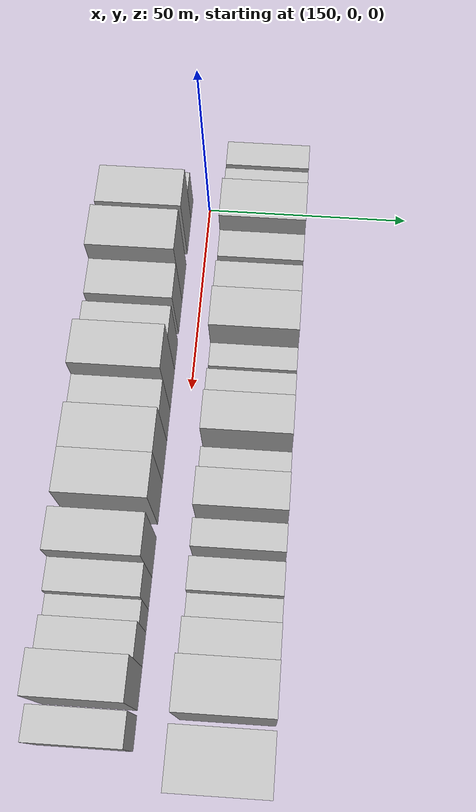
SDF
<sdf version="1.6">
 <world name="default">
  <model name="building_15">
   <static>1</static>
   <pose>143.4228 14.5000 0 0.000000 0.000000 1.570796</pose>
   <link name="link">
    <pose>0 0 7.50 0 0 0</pose>
    <collision name="collision"><geometry><box><size>20.0000 6.7200 15.0000</size></box></geometry></collision>
    <visual name="visual">
     <cast_shadows>0</cast_shadows>
     <geometry><box><size>20.0000 6.7200 15.0000</size></box></geometry>
     <material>
      <script>
       <uri>model://HANNAS_wall/materials/scripts</uri>
       <uri>model://HANNAS_wall/materials/textures</uri>
       <name>vrc/HANNAS_wall</name>
      </script>
     </material>
    </visual>
   </link>
  </model>
  <model name="building_16">
   <static>1</static>
   <pose>151.4586 14.5000 0 0.000000 0.000000 1.570796</pose>
   <link name="link">
    <pose>0 0 7.50 0 0 0</pose>
    <collision name="collision"><geometry><box><size>20.0000 7.3518 15.0000</size></box></geometry></collision>
    <visual name="visual">
     <cast_shadows>0</cast_shadows>
     <geometry><box><size>20.0000 7.3518 15.0000</size></box></geometry>
     <material>
      <script>
       <uri>model://HANNAS_wall/materials/scripts</uri>
       <uri>model://HANNAS_wall/materials/textures</uri>
       <name>vrc/HANNAS_wall</name>
      </script>
     </material>
    </visual>
   </link>
  </model>
  <model name="building_17">
   <static>1</static>
   <pose>160.2299 14.5000 0 0.000000 0.000000 1.570796</pose>
   <link name="link">
    <pose>0 0 10.50 0 0 0</pose>
    <collision name="collision"><geometry><box><size>20.0000 10.1907 21.0000</size></box></geometry></collision>
    <visual name="visual">
     <cast_shadows>0</cast_shadows>
     <geometry><box><size>20.0000 10.1907 21.0000</size></box></geometry>
     <material>
      <script>
       <uri>model://HANNAS_wall/materials/scripts</uri>
       <uri>model://HANNAS_wall/materials/textures</uri>
       <name>vrc/HANNAS_wall</name>
      </script>
     </material>
    </visual>
   </link>
  </model>
  <model name="building_18">
   <static>1</static>
   <pose>168.8607 14.5000 0 0.000000 0.000000 1.570796</pose>
   <link name="link">
    <pose>0 0 7.50 0 0 0</pose>
    <collision name="collision"><geometry><box><size>20.0000 7.0709 15.0000</size></box></geometry></collision>
    <visual name="visual">
     <cast_shadows>0</cast_shadows>
     <geometry><box><size>20.0000 7.0709 15.0000</size></box></geometry>
     <material>
      <script>
       <uri>model://HANNAS_wall/materials/scripts</uri>
       <uri>model://HANNAS_wall/materials/textures</uri>
       <name>vrc/HANNAS_wall</name>
      </script>
     </material>
    </visual>
   </link>
  </model>
  <model name="building_19">
   <static>1</static>
   <pose>179.5474 14.5000 0 0.000000 0.000000 1.570796</pose>
   <link name="link">
    <pose>0 0 9.00 0 0 0</pose>
    <collision name="collision"><geometry><box><size>20.0000 8.3025 18.0000</size></box></geometry></collision>
    <visual name="visual">
     <cast_shadows>0</cast_shadows>
     <geometry><box><size>20.0000 8.3025 18.0000</size></box></geometry>
     <material>
      <script>
       <uri>model://HANNAS_wall/materials/scripts</uri>
       <uri>model://HANNAS_wall/materials/textures</uri>
       <name>vrc/HANNAS_wall</name>
      </script>
     </material>
    </visual>
   </link>
  </model>
  <model name="building_20">
   <static>1</static>
   <pose>188.5051 14.5000 0 0.000000 0.000000 1.570796</pose>
   <link name="link">
    <pose>0 0 10.50 0 0 0</pose>
    <collision name="collision"><geometry><box><size>20.0000 9.6130 21.0000</size></box></geometry></collision>
    <visual name="visual">
     <cast_shadows>0</cast_shadows>
     <geometry><box><size>20.0000 9.6130 21.0000</size></box></geometry>
     <material>
      <script>
       <uri>model://HANNAS_wall/materials/scripts</uri>
       <uri>model://HANNAS_wall/materials/textures</uri>
       <name>vrc/HANNAS_wall</name>
      </script>
     </material>
    </visual>
   </link>
  </model>
  <model name="building_21">
   <static>1</static>
   <pose>196.2098 14.5000 0 0.000000 0.000000 1.570796</pose>
   <link name="link">
    <pose>0 0 6.00 0 0 0</pose>
    <collision name="collision"><geometry><box><size>20.0000 5.7962 12.0000</size></box></geometry></collision>
    <visual name="visual">
     <cast_shadows>0</cast_shadows>
     <geometry><box><size>20.0000 5.7962 12.0000</size></box></geometry>
     <material>
      <script>
       <uri>model://HANNAS_wall/materials/scripts</uri>
       <uri>model://HANNAS_wall/materials/textures</uri>
       <name>vrc/HANNAS_wall</name>
      </script>
     </material>
    </visual>
   </link>
  </model>
  <model name="building_22">
   <static>1</static>
   <pose>204.2929 14.5000 0 0.000000 0.000000 1.570796</pose>
   <link name="link">
    <pose>0 0 7.50 0 0 0</pose>
    <collision name="collision"><geometry><box><size>20.0000 6.3700 15.0000</size></box></geometry></collision>
    <visual name="visual">
     <cast_shadows>0</cast_shadows>
     <geometry><box><size>20.0000 6.3700 15.0000</size></box></geometry>
     <material>
      <script>
       <uri>model://HANNAS_wall/materials/scripts</uri>
       <uri>model://HANNAS_wall/materials/textures</uri>
       <name>vrc/HANNAS_wall</name>
      </script>
     </material>
    </visual>
   </link>
  </model>
  <model name="building_23">
   <static>1</static>
   <pose>211.9567 14.5000 0 0.000000 0.000000 1.570796</pose>
   <link name="link">
    <pose>0 0 9.00 0 0 0</pose>
    <collision name="collision"><geometry><box><size>20.0000 8.9577 18.0000</size></box></geometry></collision>
    <visual name="visual">
     <cast_shadows>0</cast_shadows>
     <geometry><box><size>20.0000 8.9577 18.0000</size></box></geometry>
     <material>
      <script>
       <uri>model://HANNAS_wall/materials/scripts</uri>
       <uri>model://HANNAS_wall/materials/textures</uri>
       <name>vrc/HANNAS_wall</name>
      </script>
     </material>
    </visual>
   </link>
  </model>
  <model name="building_24">
   <static>1</static>
   <pose>221.1965 14.5000 0 0.000000 0.000000 1.570796</pose>
   <link name="link">
    <pose>0 0 6.00 0 0 0</pose>
    <collision name="collision"><geometry><box><size>20.0000 5.5218 12.0000</size></box></geometry></collision>
    <visual name="visual">
     <cast_shadows>0</cast_shadows>
     <geometry><box><size>20.0000 5.5218 12.0000</size></box></geometry>
     <material>
      <script>
       <uri>model://HANNAS_wall/materials/scripts</uri>
       <uri>model://HANNAS_wall/materials/textures</uri>
       <name>vrc/HANNAS_wall</name>
      </script>
     </material>
    </visual>
   </link>
  </model>
  <model name="building_25">
   <static>1</static>
   <pose>229.0863 14.5000 0 0.000000 0.000000 1.570796</pose>
   <link name="link">
    <pose>0 0 9.00 0 0 0</pose>
    <collision name="collision"><geometry><box><size>20.0000 8.2580 18.0000</size></box></geometry></collision>
    <visual name="visual">
     <cast_shadows>0</cast_shadows>
     <geometry><box><size>20.0000 8.2580 18.0000</size></box></geometry>
     <material>
      <script>
       <uri>model://HANNAS_wall/materials/scripts</uri>
       <uri>model://HANNAS_wall/materials/textures</uri>
       <name>vrc/HANNAS_wall</name>
      </script>
     </material>
    </visual>
   </link>
  </model>
  <model name="building_26">
   <static>1</static>
   <pose>238.2428 14.5000 0 0.000000 0.000000 1.570796</pose>
   <link name="link">
    <pose>0 0 7.50 0 0 0</pose>
    <collision name="collision"><geometry><box><size>20.0000 6.0549 15.0000</size></box></geometry></collision>
    <visual name="visual">
     <cast_shadows>0</cast_shadows>
     <geometry><box><size>20.0000 6.0549 15.0000</size></box></geometry>
     <material>
      <script>
       <uri>model://HANNAS_wall/materials/scripts</uri>
       <uri>model://HANNAS_wall/materials/textures</uri>
       <name>vrc/HANNAS_wall</name>
      </script>
     </material>
    </visual>
   </link>
  </model>
  <model name="building_27">
   <static>1</static>
   <pose>246.7921 14.5000 0 0.000000 0.000000 1.570796</pose>
   <link name="link">
    <pose>0 0 7.50 0 0 0</pose>
    <collision name="collision"><geometry><box><size>20.0000 7.0436 15.0000</size></box></geometry></collision>
    <visual name="visual">
     <cast_shadows>0</cast_shadows>
     <geometry><box><size>20.0000 7.0436 15.0000</size></box></geometry>
     <material>
      <script>
       <uri>model://HANNAS_wall/materials/scripts</uri>
       <uri>model://HANNAS_wall/materials/textures</uri>
       <name>vrc/HANNAS_wall</name>
      </script>
     </material>
    </visual>
   </link>
  </model>
  <model name="building_28">
   <static>1</static>
   <pose>253.1995 14.5000 0 0.000000 0.000000 1.570796</pose>
   <link name="link">
    <pose>0 0 6.00 0 0 0</pose>
    <collision name="collision"><geometry><box><size>20.0000 5.7712 12.0000</size></box></geometry></collision>
    <visual name="visual">
     <cast_shadows>0</cast_shadows>
     <geometry><box><size>20.0000 5.7712 12.0000</size></box></geometry>
     <material>
      <script>
       <uri>model://HANNAS_wall/materials/scripts</uri>
       <uri>model://HANNAS_wall/materials/textures</uri>
       <name>vrc/HANNAS_wall</name>
      </script>
     </material>
    </visual>
   </link>
  </model>
  <model name="building_29">
   <static>1</static>
   <pose>260.0160 14.5000 0 0.000000 0.000000 1.570796</pose>
   <link name="link">
    <pose>0 0 9.00 0 0 0</pose>
    <collision name="collision"><geometry><box><size>20.0000 7.8619 18.0000</size></box></geometry></collision>
    <visual name="visual">
     <cast_shadows>0</cast_shadows>
     <geometry><box><size>20.0000 7.8619 18.0000</size></box></geometry>
     <material>
      <script>
       <uri>model://HANNAS_wall/materials/scripts</uri>
       <uri>model://HANNAS_wall/materials/textures</uri>
       <name>vrc/HANNAS_wall</name>
      </script>
     </material>
    </visual>
   </link>
  </model>
  <model name="building_30">
   <static>1</static>
   <pose>269.2634 14.5000 0 0.000000 0.000000 1.570796</pose>
   <link name="link">
    <pose>0 0 12.00 0 0 0</pose>
    <collision name="collision"><geometry><box><size>20.0000 10.6330 24.0000</size></box></geometry></collision>
    <visual name="visual">
     <cast_shadows>0</cast_shadows>
     <geometry><box><size>20.0000 10.6330 24.0000</size></box></geometry>
     <material>
      <script>
       <uri>model://HANNAS_wall/materials/scripts</uri>
       <uri>model://HANNAS_wall/materials/textures</uri>
       <name>vrc/HANNAS_wall</name>
      </script>
     </material>
    </visual>
   </link>
  </model>
  <model name="building_31">
   <static>1</static>
   <pose>282.4906 14.5000 0 0.000000 0.000000 1.570796</pose>
   <link name="link">
    <pose>0 0 12.00 0 0 0</pose>
    <collision name="collision"><geometry><box><size>20.0000 11.8214 24.0000</size></box></geometry></collision>
    <visual name="visual">
     <cast_shadows>0</cast_shadows>
     <geometry><box><size>20.0000 11.8214 24.0000</size></box></geometry>
     <material>
      <script>
       <uri>model://HANNAS_wall/materials/scripts</uri>
       <uri>model://HANNAS_wall/materials/textures</uri>
       <name>vrc/HANNAS_wall</name>
      </script>
     </material>
    </visual>
   </link>
  </model>
  <model name="building_47">
   <static>1</static>
   <pose>150.4358 -14.5000 0 0.000000 0.000000 1.570796</pose>
   <link name="link">
    <pose>0 0 6.00 0 0 0</pose>
    <collision name="collision"><geometry><box><size>20.0000 5.7327 12.0000</size></box></geometry></collision>
    <visual name="visual">
     <cast_shadows>0</cast_shadows>
     <geometry><box><size>20.0000 5.7327 12.0000</size></box></geometry>
     <material>
      <script>
       <uri>model://HANNAS_wall/materials/scripts</uri>
       <uri>model://HANNAS_wall/materials/textures</uri>
       <name>vrc/HANNAS_wall</name>
      </script>
     </material>
    </visual>
   </link>
  </model>
  <model name="building_48">
   <static>1</static>
   <pose>158.3227 -14.5000 0 0.000000 0.000000 1.570796</pose>
   <link name="link">
    <pose>0 0 10.50 0 0 0</pose>
    <collision name="collision"><geometry><box><size>20.0000 10.0410 21.0000</size></box></geometry></collision>
    <visual name="visual">
     <cast_shadows>0</cast_shadows>
     <geometry><box><size>20.0000 10.0410 21.0000</size></box></geometry>
     <material>
      <script>
       <uri>model://HANNAS_wall/materials/scripts</uri>
       <uri>model://HANNAS_wall/materials/textures</uri>
       <name>vrc/HANNAS_wall</name>
      </script>
     </material>
    </visual>
   </link>
  </model>
  <model name="building_49">
   <static>1</static>
   <pose>171.5510 -14.5000 0 0.000000 0.000000 1.570796</pose>
   <link name="link">
    <pose>0 0 12.00 0 0 0</pose>
    <collision name="collision"><geometry><box><size>20.0000 10.4157 24.0000</size></box></geometry></collision>
    <visual name="visual">
     <cast_shadows>0</cast_shadows>
     <geometry><box><size>20.0000 10.4157 24.0000</size></box></geometry>
     <material>
      <script>
       <uri>model://HANNAS_wall/materials/scripts</uri>
       <uri>model://HANNAS_wall/materials/textures</uri>
       <name>vrc/HANNAS_wall</name>
      </script>
     </material>
    </visual>
   </link>
  </model>
  <model name="building_50">
   <static>1</static>
   <pose>181.2449 -14.5000 0 0.000000 0.000000 1.570796</pose>
   <link name="link">
    <pose>0 0 9.00 0 0 0</pose>
    <collision name="collision"><geometry><box><size>20.0000 8.9720 18.0000</size></box></geometry></collision>
    <visual name="visual">
     <cast_shadows>0</cast_shadows>
     <geometry><box><size>20.0000 8.9720 18.0000</size></box></geometry>
     <material>
      <script>
       <uri>model://HANNAS_wall/materials/scripts</uri>
       <uri>model://HANNAS_wall/materials/textures</uri>
       <name>vrc/HANNAS_wall</name>
      </script>
     </material>
    </visual>
   </link>
  </model>
  <model name="building_51">
   <static>1</static>
   <pose>191.5676 -14.5000 0 0.000000 0.000000 1.570796</pose>
   <link name="link">
    <pose>0 0 9.00 0 0 0</pose>
    <collision name="collision"><geometry><box><size>20.0000 7.6734 18.0000</size></box></geometry></collision>
    <visual name="visual">
     <cast_shadows>0</cast_shadows>
     <geometry><box><size>20.0000 7.6734 18.0000</size></box></geometry>
     <material>
      <script>
       <uri>model://HANNAS_wall/materials/scripts</uri>
       <uri>model://HANNAS_wall/materials/textures</uri>
       <name>vrc/HANNAS_wall</name>
      </script>
     </material>
    </visual>
   </link>
  </model>
  <model name="building_52">
   <static>1</static>
   <pose>200.5616 -14.5000 0 0.000000 0.000000 1.570796</pose>
   <link name="link">
    <pose>0 0 12.00 0 0 0</pose>
    <collision name="collision"><geometry><box><size>20.0000 10.3144 24.0000</size></box></geometry></collision>
    <visual name="visual">
     <cast_shadows>0</cast_shadows>
     <geometry><box><size>20.0000 10.3144 24.0000</size></box></geometry>
     <material>
      <script>
       <uri>model://HANNAS_wall/materials/scripts</uri>
       <uri>model://HANNAS_wall/materials/textures</uri>
       <name>vrc/HANNAS_wall</name>
      </script>
     </material>
    </visual>
   </link>
  </model>
  <model name="building_53">
   <static>1</static>
   <pose>209.6001 -14.5000 0 0.000000 0.000000 1.570796</pose>
   <link name="link">
    <pose>0 0 9.00 0 0 0</pose>
    <collision name="collision"><geometry><box><size>20.0000 7.7626 18.0000</size></box></geometry></collision>
    <visual name="visual">
     <cast_shadows>0</cast_shadows>
     <geometry><box><size>20.0000 7.7626 18.0000</size></box></geometry>
     <material>
      <script>
       <uri>model://HANNAS_wall/materials/scripts</uri>
       <uri>model://HANNAS_wall/materials/textures</uri>
       <name>vrc/HANNAS_wall</name>
      </script>
     </material>
    </visual>
   </link>
  </model>
  <model name="building_54">
   <static>1</static>
   <pose>218.4899 -14.5000 0 0.000000 0.000000 1.570796</pose>
   <link name="link">
    <pose>0 0 10.50 0 0 0</pose>
    <collision name="collision"><geometry><box><size>20.0000 10.0170 21.0000</size></box></geometry></collision>
    <visual name="visual">
     <cast_shadows>0</cast_shadows>
     <geometry><box><size>20.0000 10.0170 21.0000</size></box></geometry>
     <material>
      <script>
       <uri>model://HANNAS_wall/materials/scripts</uri>
       <uri>model://HANNAS_wall/materials/textures</uri>
       <name>vrc/HANNAS_wall</name>
      </script>
     </material>
    </visual>
   </link>
  </model>
  <model name="building_55">
   <static>1</static>
   <pose>228.4119 -14.5000 0 0.000000 0.000000 1.570796</pose>
   <link name="link">
    <pose>0 0 10.50 0 0 0</pose>
    <collision name="collision"><geometry><box><size>20.0000 9.8272 21.0000</size></box></geometry></collision>
    <visual name="visual">
     <cast_shadows>0</cast_shadows>
     <geometry><box><size>20.0000 9.8272 21.0000</size></box></geometry>
     <material>
      <script>
       <uri>model://HANNAS_wall/materials/scripts</uri>
       <uri>model://HANNAS_wall/materials/textures</uri>
       <name>vrc/HANNAS_wall</name>
      </script>
     </material>
    </visual>
   </link>
  </model>
  <model name="building_56">
   <static>1</static>
   <pose>240.8388 -14.5000 0 0.000000 0.000000 1.570796</pose>
   <link name="link">
    <pose>0 0 10.50 0 0 0</pose>
    <collision name="collision"><geometry><box><size>20.0000 9.0266 21.0000</size></box></geometry></collision>
    <visual name="visual">
     <cast_shadows>0</cast_shadows>
     <geometry><box><size>20.0000 9.0266 21.0000</size></box></geometry>
     <material>
      <script>
       <uri>model://HANNAS_wall/materials/scripts</uri>
       <uri>model://HANNAS_wall/materials/textures</uri>
       <name>vrc/HANNAS_wall</name>
      </script>
     </material>
    </visual>
   </link>
  </model>
  <model name="building_57">
   <static>1</static>
   <pose>248.8666 -14.5000 0 0.000000 0.000000 1.570796</pose>
   <link name="link">
    <pose>0 0 7.50 0 0 0</pose>
    <collision name="collision"><geometry><box><size>20.0000 7.0290 15.0000</size></box></geometry></collision>
    <visual name="visual">
     <cast_shadows>0</cast_shadows>
     <geometry><box><size>20.0000 7.0290 15.0000</size></box></geometry>
     <material>
      <script>
       <uri>model://HANNAS_wall/materials/scripts</uri>
       <uri>model://HANNAS_wall/materials/textures</uri>
       <name>vrc/HANNAS_wall</name>
      </script>
     </material>
    </visual>
   </link>
  </model>
  <model name="building_58">
   <static>1</static>
   <pose>254.8053 -14.5000 0 0.000000 0.000000 1.570796</pose>
   <link name="link">
    <pose>0 0 6.00 0 0 0</pose>
    <collision name="collision"><geometry><box><size>20.0000 4.8484 12.0000</size></box></geometry></collision>
    <visual name="visual">
     <cast_shadows>0</cast_shadows>
     <geometry><box><size>20.0000 4.8484 12.0000</size></box></geometry>
     <material>
      <script>
       <uri>model://HANNAS_wall/materials/scripts</uri>
       <uri>model://HANNAS_wall/materials/textures</uri>
       <name>vrc/HANNAS_wall</name>
      </script>
     </material>
    </visual>
   </link>
  </model>
  <model name="building_59">
   <static>1</static>
   <pose>260.8475 -14.5000 0 0.000000 0.000000 1.570796</pose>
   <link name="link">
    <pose>0 0 7.50 0 0 0</pose>
    <collision name="collision"><geometry><box><size>20.0000 7.2360 15.0000</size></box></geometry></collision>
    <visual name="visual">
     <cast_shadows>0</cast_shadows>
     <geometry><box><size>20.0000 7.2360 15.0000</size></box></geometry>
     <material>
      <script>
       <uri>model://HANNAS_wall/materials/scripts</uri>
       <uri>model://HANNAS_wall/materials/textures</uri>
       <name>vrc/HANNAS_wall</name>
      </script>
     </material>
    </visual>
   </link>
  </model>
  <model name="building_60">
   <static>1</static>
   <pose>268.9087 -14.5000 0 0.000000 0.000000 1.570796</pose>
   <link name="link">
    <pose>0 0 10.50 0 0 0</pose>
    <collision name="collision"><geometry><box><size>20.0000 8.8864 21.0000</size></box></geometry></collision>
    <visual name="visual">
     <cast_shadows>0</cast_shadows>
     <geometry><box><size>20.0000 8.8864 21.0000</size></box></geometry>
     <material>
      <script>
       <uri>model://HANNAS_wall/materials/scripts</uri>
       <uri>model://HANNAS_wall/materials/textures</uri>
       <name>vrc/HANNAS_wall</name>
      </script>
     </material>
    </visual>
   </link>
  </model>
  <model name="building_61">
   <static>1</static>
   <pose>277.8998 -14.5000 0 0.000000 0.000000 1.570796</pose>
   <link name="link">
    <pose>0 0 7.50 0 0 0</pose>
    <collision name="collision"><geometry><box><size>20.0000 7.0959 15.0000</size></box></geometry></collision>
    <visual name="visual">
     <cast_shadows>0</cast_shadows>
     <geometry><box><size>20.0000 7.0959 15.0000</size></box></geometry>
     <material>
      <script>
       <uri>model://HANNAS_wall/materials/scripts</uri>
       <uri>model://HANNAS_wall/materials/textures</uri>
       <name>vrc/HANNAS_wall</name>
      </script>
     </material>
    </visual>
   </link>
  </model>
 </world>
</sdf>
